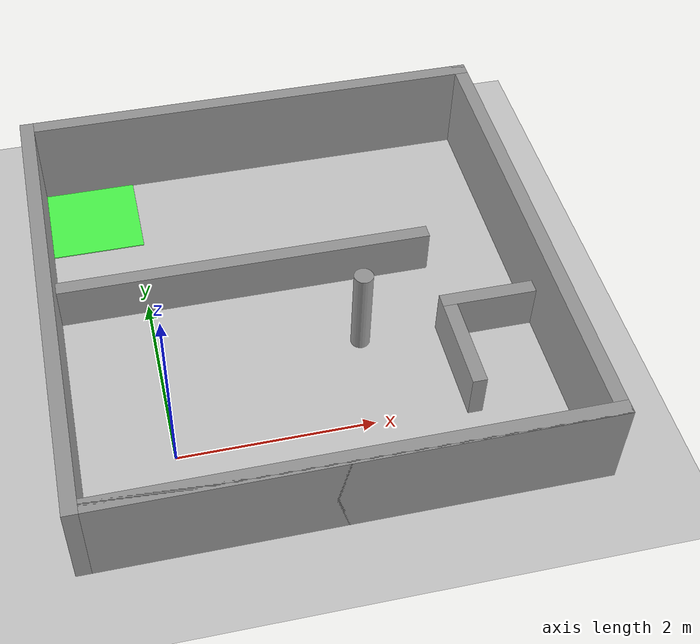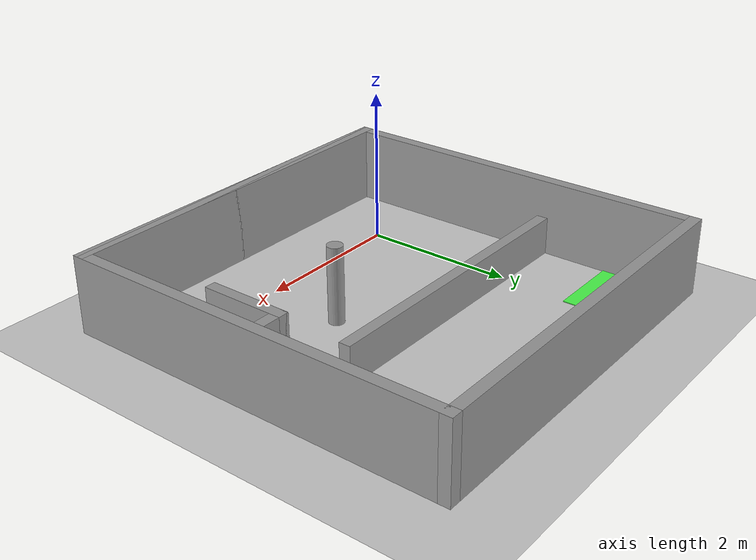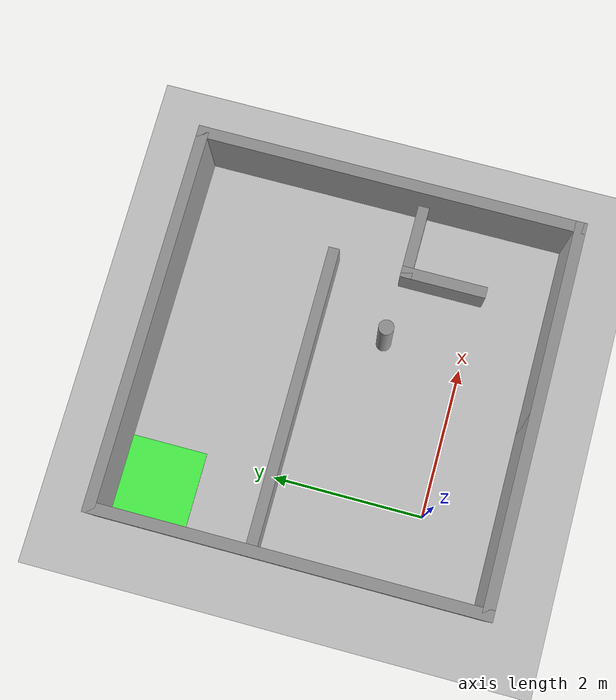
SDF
<sdf version="1.6">
 <world name="default">
  <light name="sun" type="directional">
   <pose>0 0 10 0 -0 0</pose>
   <diffuse>0.8 0.8 0.8 1</diffuse>
   <specular>0.1 0.1 0.1 1</specular>
   <attenuation>
    <range>1000</range>
    <constant>0.9</constant>
    <linear>0.01</linear>
    <quadratic>0.001</quadratic>
   </attenuation>
   <direction>-0.5 0.5 -1</direction>
  </light>
  <model name="ground_plane">
   <static>1</static>
   <link name="link">
    <collision name="collision">
     <geometry><plane><normal>0 0 1</normal><size>100 100</size></plane></geometry>
     <surface><friction><ode><mu>100</mu><mu2>50</mu2></ode></friction></surface>
    </collision>
    <visual name="visual">
     <cast_shadows>0</cast_shadows>
     <geometry><plane><normal>0 0 1</normal><size>100 100</size></plane></geometry>
     <material>
      <script><uri>file://media/materials/scripts/gazebo.material</uri><name>Gazebo/Grey</name></script>
     </material>
    </visual>
   </link>
  </model>
  <gravity>0 0 -9.8</gravity>
  <magnetic_field>6e-06 2.3e-05 -4.2e-05</magnetic_field>
  <atmosphere type="adiabatic"/>
  <physics name="default_physics" default="0" type="ode">
   <max_step_size>0.001</max_step_size>
   <real_time_factor>1</real_time_factor>
   <real_time_update_rate>1000</real_time_update_rate>
  </physics>
  <scene><ambient>0.4 0.4 0.4 1</ambient><background>0.7 0.7 0.7 1</background><shadows>1</shadows></scene>
  <spherical_coordinates>
   <surface_model>EARTH_WGS84</surface_model>
   <latitude_deg>0</latitude_deg>
   <longitude_deg>0</longitude_deg>
   <elevation>0</elevation>
   <heading_deg>0</heading_deg>
  </spherical_coordinates>
  <model name="wall4">
   <link name="Wall_56">
    <pose>0 0 -1 0 -0 0</pose>
    <inertial>
     <mass>1</mass>
     <inertia><ixx>1</ixx><ixy>0</ixy><ixz>0</ixz><iyy>1</iyy><iyz>0</iyz><izz>1</izz></inertia>
    </inertial>
    <visual name="Wall_56_Visual">
     <pose>0 0 1.25 0 -0 0</pose>
     <geometry><box><size>4.15 0.15 0.5</size></box></geometry>
     <material>
      <script><uri>file://media/materials/scripts/gazebo.material</uri><name>Gazebo/Grey</name></script>
      <ambient>1 1 1 1</ambient>
      <diffuse>0.7 0.7 0.7 1</diffuse>
      <specular>0.01 0.01 0.01 1</specular>
      <emissive>0 0 0 1</emissive>
      <shader type="vertex"><normal_map>__default__</normal_map></shader>
     </material>
    </visual>
    <collision name="Wall_56_Collision">
     <pose>0 0 1.25 0 -0 0</pose>
     <geometry><box><size>4.15 0.15 0.5</size></box></geometry>
     <surface>
      <friction>
       <ode><mu>1</mu><mu2>1</mu2><fdir1>0 0 0</fdir1><slip1>0</slip1><slip2>0</slip2></ode>
       <torsional>
        <coefficient>1</coefficient>
        <patch_radius>0</patch_radius>
        <surface_radius>0</surface_radius>
        <use_patch_radius>1</use_patch_radius>
        <ode><slip>0</slip></ode>
       </torsional>
      </friction>
      <bounce><restitution_coefficient>0</restitution_coefficient><threshold>1e+06</threshold></bounce>
      <contact>
       <collide_without_contact>0</collide_without_contact>
       <collide_without_contact_bitmask>1</collide_without_contact_bitmask>
       <collide_bitmask>1</collide_bitmask>
       <ode>
        <soft_cfm>0</soft_cfm>
        <soft_erp>0.2</soft_erp>
        <kp>1e+13</kp>
        <kd>1</kd>
        <max_vel>0.01</max_vel>
        <min_depth>0</min_depth>
       </ode>
       <bullet>
        <split_impulse>1</split_impulse>
        <split_impulse_penetration_threshold>-0.01</split_impulse_penetration_threshold>
        <soft_cfm>0</soft_cfm>
        <soft_erp>0.2</soft_erp>
        <kp>1e+13</kp>
        <kd>1</kd>
       </bullet>
      </contact>
     </surface>
    </collision>
   </link>
   <static>1</static>
   <pose>1 2 0 0 -0 0</pose>
  </model>
  <model name="rectangularWall_0">
   <link name="Wall_44">
    <pose>-2.5 0 -0.75 0 -0 1.5708</pose>
    <inertial>
     <mass>1</mass>
     <inertia><ixx>1</ixx><ixy>0</ixy><ixz>0</ixz><iyy>1</iyy><iyz>0</iyz><izz>1</izz></inertia>
    </inertial>
    <visual name="Wall_44_Visual">
     <pose>0 0 1.25 0 -0 0</pose>
     <geometry><box><size>5.15 0.15 1</size></box></geometry>
     <material>
      <script><uri>file://media/materials/scripts/gazebo.material</uri><name>Gazebo/Grey</name></script>
      <ambient>1 1 1 1</ambient>
      <diffuse>0.7 0.7 0.7 1</diffuse>
      <specular>0.01 0.01 0.01 1</specular>
      <emissive>0 0 0 1</emissive>
      <shader type="vertex"><normal_map>__default__</normal_map></shader>
     </material>
    </visual>
    <collision name="Wall_44_Collision">
     <pose>0 0 1.25 0 -0 0</pose>
     <geometry><box><size>5.15 0.15 1</size></box></geometry>
     <surface>
      <friction>
       <ode><mu>1</mu><mu2>1</mu2><fdir1>0 0 0</fdir1><slip1>0</slip1><slip2>0</slip2></ode>
       <torsional>
        <coefficient>1</coefficient>
        <patch_radius>0</patch_radius>
        <surface_radius>0</surface_radius>
        <use_patch_radius>1</use_patch_radius>
        <ode><slip>0</slip></ode>
       </torsional>
      </friction>
      <bounce><restitution_coefficient>0</restitution_coefficient><threshold>1e+06</threshold></bounce>
      <contact>
       <collide_without_contact>0</collide_without_contact>
       <collide_without_contact_bitmask>1</collide_without_contact_bitmask>
       <collide_bitmask>1</collide_bitmask>
       <ode>
        <soft_cfm>0</soft_cfm>
        <soft_erp>0.2</soft_erp>
        <kp>1e+13</kp>
        <kd>1</kd>
        <max_vel>0.01</max_vel>
        <min_depth>0</min_depth>
       </ode>
       <bullet>
        <split_impulse>1</split_impulse>
        <split_impulse_penetration_threshold>-0.01</split_impulse_penetration_threshold>
        <soft_cfm>0</soft_cfm>
        <soft_erp>0.2</soft_erp>
        <kp>1e+13</kp>
        <kd>1</kd>
       </bullet>
      </contact>
     </surface>
    </collision>
   </link>
   <link name="Wall_46">
    <pose>0 -2.5 -0.75 0 -0 0</pose>
    <inertial>
     <mass>1</mass>
     <inertia><ixx>1</ixx><ixy>0</ixy><ixz>0</ixz><iyy>1</iyy><iyz>0</iyz><izz>1</izz></inertia>
    </inertial>
    <visual name="Wall_46_Visual">
     <pose>0 0 1.25 0 -0 0</pose>
     <geometry><box><size>5.15 0.15 1</size></box></geometry>
     <material>
      <script><uri>file://media/materials/scripts/gazebo.material</uri><name>Gazebo/Grey</name></script>
      <ambient>1 1 1 1</ambient>
      <diffuse>0.7 0.7 0.7 1</diffuse>
      <specular>0.01 0.01 0.01 1</specular>
      <emissive>0 0 0 1</emissive>
      <shader type="vertex"><normal_map>__default__</normal_map></shader>
     </material>
    </visual>
    <collision name="Wall_46_Collision">
     <pose>0 0 1.25 0 -0 0</pose>
     <geometry><box><size>5.15 0.15 1</size></box></geometry>
     <surface>
      <friction>
       <ode><mu>1</mu><mu2>1</mu2><fdir1>0 0 0</fdir1><slip1>0</slip1><slip2>0</slip2></ode>
       <torsional>
        <coefficient>1</coefficient>
        <patch_radius>0</patch_radius>
        <surface_radius>0</surface_radius>
        <use_patch_radius>1</use_patch_radius>
        <ode><slip>0</slip></ode>
       </torsional>
      </friction>
      <bounce><restitution_coefficient>0</restitution_coefficient><threshold>1e+06</threshold></bounce>
      <contact>
       <collide_without_contact>0</collide_without_contact>
       <collide_without_contact_bitmask>1</collide_without_contact_bitmask>
       <collide_bitmask>1</collide_bitmask>
       <ode>
        <soft_cfm>0</soft_cfm>
        <soft_erp>0.2</soft_erp>
        <kp>1e+13</kp>
        <kd>1</kd>
        <max_vel>0.01</max_vel>
        <min_depth>0</min_depth>
       </ode>
       <bullet>
        <split_impulse>1</split_impulse>
        <split_impulse_penetration_threshold>-0.01</split_impulse_penetration_threshold>
        <soft_cfm>0</soft_cfm>
        <soft_erp>0.2</soft_erp>
        <kp>1e+13</kp>
        <kd>1</kd>
       </bullet>
      </contact>
     </surface>
    </collision>
   </link>
   <link name="Wall_48">
    <pose>0 -2.5 -0.75 0 -0 3.14159</pose>
    <inertial>
     <mass>1</mass>
     <inertia><ixx>1</ixx><ixy>0</ixy><ixz>0</ixz><iyy>1</iyy><iyz>0</iyz><izz>1</izz></inertia>
    </inertial>
    <visual name="Wall_48_Visual">
     <pose>0 0 1.25 0 -0 0</pose>
     <geometry><box><size>5.15 0.15 1</size></box></geometry>
     <material>
      <script><uri>file://media/materials/scripts/gazebo.material</uri><name>Gazebo/Grey</name></script>
      <ambient>1 1 1 1</ambient>
      <diffuse>0.7 0.7 0.7 1</diffuse>
      <specular>0.01 0.01 0.01 1</specular>
      <emissive>0 0 0 1</emissive>
      <shader type="vertex"><normal_map>__default__</normal_map></shader>
     </material>
    </visual>
    <collision name="Wall_48_Collision">
     <pose>0 0 1.25 0 -0 0</pose>
     <geometry><box><size>5.15 0.15 1</size></box></geometry>
     <surface>
      <friction>
       <ode><mu>1</mu><mu2>1</mu2><fdir1>0 0 0</fdir1><slip1>0</slip1><slip2>0</slip2></ode>
       <torsional>
        <coefficient>1</coefficient>
        <patch_radius>0</patch_radius>
        <surface_radius>0</surface_radius>
        <use_patch_radius>1</use_patch_radius>
        <ode><slip>0</slip></ode>
       </torsional>
      </friction>
      <bounce><restitution_coefficient>0</restitution_coefficient><threshold>1e+06</threshold></bounce>
      <contact>
       <collide_without_contact>0</collide_without_contact>
       <collide_without_contact_bitmask>1</collide_without_contact_bitmask>
       <collide_bitmask>1</collide_bitmask>
       <ode>
        <soft_cfm>0</soft_cfm>
        <soft_erp>0.2</soft_erp>
        <kp>1e+13</kp>
        <kd>1</kd>
        <max_vel>0.01</max_vel>
        <min_depth>0</min_depth>
       </ode>
       <bullet>
        <split_impulse>1</split_impulse>
        <split_impulse_penetration_threshold>-0.01</split_impulse_penetration_threshold>
        <soft_cfm>0</soft_cfm>
        <soft_erp>0.2</soft_erp>
        <kp>1e+13</kp>
        <kd>1</kd>
       </bullet>
      </contact>
     </surface>
    </collision>
   </link>
   <link name="Wall_50">
    <pose>0 -2.5 -0.75 0 -0 3.14159</pose>
    <inertial>
     <mass>1</mass>
     <inertia><ixx>1</ixx><ixy>0</ixy><ixz>0</ixz><iyy>1</iyy><iyz>0</iyz><izz>1</izz></inertia>
    </inertial>
    <visual name="Wall_50_Visual">
     <pose>0 0 1.25 0 -0 0</pose>
     <geometry><box><size>5.15 0.15 1</size></box></geometry>
     <material>
      <script><uri>file://media/materials/scripts/gazebo.material</uri><name>Gazebo/Grey</name></script>
      <ambient>1 1 1 1</ambient>
      <diffuse>0.7 0.7 0.7 1</diffuse>
      <specular>0.01 0.01 0.01 1</specular>
      <emissive>0 0 0 1</emissive>
      <shader type="vertex"><normal_map>__default__</normal_map></shader>
     </material>
    </visual>
    <collision name="Wall_50_Collision">
     <pose>0 0 1.25 0 -0 0</pose>
     <geometry><box><size>5.15 0.15 1</size></box></geometry>
     <surface>
      <friction>
       <ode><mu>1</mu><mu2>1</mu2><fdir1>0 0 0</fdir1><slip1>0</slip1><slip2>0</slip2></ode>
       <torsional>
        <coefficient>1</coefficient>
        <patch_radius>0</patch_radius>
        <surface_radius>0</surface_radius>
        <use_patch_radius>1</use_patch_radius>
        <ode><slip>0</slip></ode>
       </torsional>
      </friction>
      <bounce><restitution_coefficient>0</restitution_coefficient><threshold>1e+06</threshold></bounce>
      <contact>
       <collide_without_contact>0</collide_without_contact>
       <collide_without_contact_bitmask>1</collide_without_contact_bitmask>
       <collide_bitmask>1</collide_bitmask>
       <ode>
        <soft_cfm>0</soft_cfm>
        <soft_erp>0.2</soft_erp>
        <kp>1e+13</kp>
        <kd>1</kd>
        <max_vel>0.01</max_vel>
        <min_depth>0</min_depth>
       </ode>
       <bullet>
        <split_impulse>1</split_impulse>
        <split_impulse_penetration_threshold>-0.01</split_impulse_penetration_threshold>
        <soft_cfm>0</soft_cfm>
        <soft_erp>0.2</soft_erp>
        <kp>1e+13</kp>
        <kd>1</kd>
       </bullet>
      </contact>
     </surface>
    </collision>
   </link>
   <link name="Wall_52">
    <pose>2.5 0 -0.75 0 -0 1.5708</pose>
    <inertial>
     <mass>1</mass>
     <inertia><ixx>1</ixx><ixy>0</ixy><ixz>0</ixz><iyy>1</iyy><iyz>0</iyz><izz>1</izz></inertia>
    </inertial>
    <visual name="Wall_52_Visual">
     <pose>0 0 1.25 0 -0 0</pose>
     <geometry><box><size>5.15 0.15 1</size></box></geometry>
     <material>
      <script><uri>file://media/materials/scripts/gazebo.material</uri><name>Gazebo/Grey</name></script>
      <ambient>1 1 1 1</ambient>
      <diffuse>0.7 0.7 0.7 1</diffuse>
      <specular>0.01 0.01 0.01 1</specular>
      <emissive>0 0 0 1</emissive>
      <shader type="vertex"><normal_map>__default__</normal_map></shader>
     </material>
    </visual>
    <collision name="Wall_52_Collision">
     <pose>0 0 1.25 0 -0 0</pose>
     <geometry><box><size>5.15 0.15 1</size></box></geometry>
     <surface>
      <friction>
       <ode><mu>1</mu><mu2>1</mu2><fdir1>0 0 0</fdir1><slip1>0</slip1><slip2>0</slip2></ode>
       <torsional>
        <coefficient>1</coefficient>
        <patch_radius>0</patch_radius>
        <surface_radius>0</surface_radius>
        <use_patch_radius>1</use_patch_radius>
        <ode><slip>0</slip></ode>
       </torsional>
      </friction>
      <bounce><restitution_coefficient>0</restitution_coefficient><threshold>1e+06</threshold></bounce>
      <contact>
       <collide_without_contact>0</collide_without_contact>
       <collide_without_contact_bitmask>1</collide_without_contact_bitmask>
       <collide_bitmask>1</collide_bitmask>
       <ode>
        <soft_cfm>0</soft_cfm>
        <soft_erp>0.2</soft_erp>
        <kp>1e+13</kp>
        <kd>1</kd>
        <max_vel>0.01</max_vel>
        <min_depth>0</min_depth>
       </ode>
       <bullet>
        <split_impulse>1</split_impulse>
        <split_impulse_penetration_threshold>-0.01</split_impulse_penetration_threshold>
        <soft_cfm>0</soft_cfm>
        <soft_erp>0.2</soft_erp>
        <kp>1e+13</kp>
        <kd>1</kd>
       </bullet>
      </contact>
     </surface>
    </collision>
   </link>
   <link name="Wall_54">
    <pose>0 2.5 -0.75 0 -0 3.14159</pose>
    <inertial>
     <mass>1</mass>
     <inertia><ixx>1</ixx><ixy>0</ixy><ixz>0</ixz><iyy>1</iyy><iyz>0</iyz><izz>1</izz></inertia>
    </inertial>
    <visual name="Wall_54_Visual">
     <pose>0 0 1.25 0 -0 0</pose>
     <geometry><box><size>5.15 0.15 1</size></box></geometry>
     <material>
      <script><uri>file://media/materials/scripts/gazebo.material</uri><name>Gazebo/Grey</name></script>
      <ambient>1 1 1 1</ambient>
      <diffuse>0.7 0.7 0.7 1</diffuse>
      <specular>0.01 0.01 0.01 1</specular>
      <emissive>0 0 0 1</emissive>
      <shader type="vertex"><normal_map>__default__</normal_map></shader>
     </material>
    </visual>
    <collision name="Wall_54_Collision">
     <pose>0 0 1.25 0 -0 0</pose>
     <geometry><box><size>5.15 0.15 1</size></box></geometry>
     <surface>
      <friction>
       <ode><mu>1</mu><mu2>1</mu2><fdir1>0 0 0</fdir1><slip1>0</slip1><slip2>0</slip2></ode>
       <torsional>
        <coefficient>1</coefficient>
        <patch_radius>0</patch_radius>
        <surface_radius>0</surface_radius>
        <use_patch_radius>1</use_patch_radius>
        <ode><slip>0</slip></ode>
       </torsional>
      </friction>
      <bounce><restitution_coefficient>0</restitution_coefficient><threshold>1e+06</threshold></bounce>
      <contact>
       <collide_without_contact>0</collide_without_contact>
       <collide_without_contact_bitmask>1</collide_without_contact_bitmask>
       <collide_bitmask>1</collide_bitmask>
       <ode>
        <soft_cfm>0</soft_cfm>
        <soft_erp>0.2</soft_erp>
        <kp>1e+13</kp>
        <kd>1</kd>
        <max_vel>0.01</max_vel>
        <min_depth>0</min_depth>
       </ode>
       <bullet>
        <split_impulse>1</split_impulse>
        <split_impulse_penetration_threshold>-0.01</split_impulse_penetration_threshold>
        <soft_cfm>0</soft_cfm>
        <soft_erp>0.2</soft_erp>
        <kp>1e+13</kp>
        <kd>1</kd>
       </bullet>
      </contact>
     </surface>
    </collision>
   </link>
   <static>1</static>
   <pose>1.5 1.5 0 0 -0 0</pose>
  </model>
  <model name="unit_cylinder_0_0">
   <link name="link">
    <inertial>
     <mass>1</mass>
     <inertia><ixx>0.145833</ixx><ixy>0</ixy><ixz>0</ixz><iyy>0.145833</iyy><iyz>0</iyz><izz>0.125</izz></inertia>
    </inertial>
    <visual name="visual">
     <geometry><cylinder><radius>0.1</radius><length>1</length></cylinder></geometry>
     <material>
      <script><name>Gazebo/Grey</name><uri>file://media/materials/scripts/gazebo.material</uri></script>
      <ambient>0.3 0.3 0.3 1</ambient>
      <diffuse>0.7 0.7 0.7 1</diffuse>
      <specular>0.01 0.01 0.01 1</specular>
      <emissive>0 0 0 1</emissive>
      <shader type="vertex"><normal_map>__default__</normal_map></shader>
     </material>
    </visual>
    <collision name="collision">
     <geometry><cylinder><radius>0.1</radius><length>1</length></cylinder></geometry>
     <surface>
      <friction>
       <ode><mu>1</mu><mu2>1</mu2><fdir1>0 0 0</fdir1><slip1>0</slip1><slip2>0</slip2></ode>
       <torsional>
        <coefficient>1</coefficient>
        <patch_radius>0</patch_radius>
        <surface_radius>0</surface_radius>
        <use_patch_radius>1</use_patch_radius>
        <ode><slip>0</slip></ode>
       </torsional>
      </friction>
      <bounce><restitution_coefficient>0</restitution_coefficient><threshold>1e+06</threshold></bounce>
      <contact>
       <collide_without_contact>0</collide_without_contact>
       <collide_without_contact_bitmask>1</collide_without_contact_bitmask>
       <collide_bitmask>1</collide_bitmask>
       <ode>
        <soft_cfm>0</soft_cfm>
        <soft_erp>0.2</soft_erp>
        <kp>1e+13</kp>
        <kd>1</kd>
        <max_vel>0.01</max_vel>
        <min_depth>0</min_depth>
       </ode>
       <bullet>
        <split_impulse>1</split_impulse>
        <split_impulse_penetration_threshold>-0.01</split_impulse_penetration_threshold>
        <soft_cfm>0</soft_cfm>
        <soft_erp>0.2</soft_erp>
        <kp>1e+13</kp>
        <kd>1</kd>
       </bullet>
      </contact>
     </surface>
    </collision>
   </link>
   <static>0</static>
   <pose>2.1037 1.06319 0.499992 0 0 -5e-06</pose>
  </model>
  <model name="wall3_0">
   <link name="Wall_0">
    <pose>-0.5 0 -1 0 -0 1.5708</pose>
    <inertial>
     <mass>1</mass>
     <inertia><ixx>1</ixx><ixy>0</ixy><ixz>0</ixz><iyy>1</iyy><iyz>0</iyz><izz>1</izz></inertia>
    </inertial>
    <visual name="Wall_0_Visual">
     <pose>0 0 1.25 0 -0 0</pose>
     <geometry><box><size>1.15 0.15 0.5</size></box></geometry>
     <material>
      <script><uri>file://media/materials/scripts/gazebo.material</uri><name>Gazebo/Grey</name></script>
      <ambient>1 1 1 1</ambient>
      <diffuse>0.7 0.7 0.7 1</diffuse>
      <specular>0.01 0.01 0.01 1</specular>
      <emissive>0 0 0 1</emissive>
      <shader type="vertex"><normal_map>__default__</normal_map></shader>
     </material>
    </visual>
    <collision name="Wall_0_Collision">
     <pose>0 0 1.25 0 -0 0</pose>
     <geometry><box><size>1.15 0.15 0.5</size></box></geometry>
     <surface>
      <friction>
       <ode><mu>1</mu><mu2>1</mu2><fdir1>0 0 0</fdir1><slip1>0</slip1><slip2>0</slip2></ode>
       <torsional>
        <coefficient>1</coefficient>
        <patch_radius>0</patch_radius>
        <surface_radius>0</surface_radius>
        <use_patch_radius>1</use_patch_radius>
        <ode><slip>0</slip></ode>
       </torsional>
      </friction>
      <bounce><restitution_coefficient>0</restitution_coefficient><threshold>1e+06</threshold></bounce>
      <contact>
       <collide_without_contact>0</collide_without_contact>
       <collide_without_contact_bitmask>1</collide_without_contact_bitmask>
       <collide_bitmask>1</collide_bitmask>
       <ode>
        <soft_cfm>0</soft_cfm>
        <soft_erp>0.2</soft_erp>
        <kp>1e+13</kp>
        <kd>1</kd>
        <max_vel>0.01</max_vel>
        <min_depth>0</min_depth>
       </ode>
       <bullet>
        <split_impulse>1</split_impulse>
        <split_impulse_penetration_threshold>-0.01</split_impulse_penetration_threshold>
        <soft_cfm>0</soft_cfm>
        <soft_erp>0.2</soft_erp>
        <kp>1e+13</kp>
        <kd>1</kd>
       </bullet>
      </contact>
     </surface>
    </collision>
   </link>
   <link name="Wall_2">
    <pose>0 0.5 0 0 -0 0</pose>
    <visual name="Wall_2_Visual">
     <pose>0 0 0.25 0 -0 0</pose>
     <geometry><box><size>1.15 0.15 0.5</size></box></geometry>
     <material>
      <script><uri>file://media/materials/scripts/gazebo.material</uri><name>Gazebo/Grey</name></script>
      <ambient>1 1 1 1</ambient>
      <diffuse>0.7 0.7 0.7 1</diffuse>
      <specular>0.01 0.01 0.01 1</specular>
      <emissive>0 0 0 1</emissive>
     </material>
    </visual>
    <collision name="Wall_2_Collision">
     <pose>0 0 0.25 0 -0 0</pose>
     <geometry><box><size>1.15 0.15 0.5</size></box></geometry>
     <surface>
      <friction>
       <ode><mu>1</mu><mu2>1</mu2><fdir1>0 0 0</fdir1><slip1>0</slip1><slip2>0</slip2></ode>
       <torsional>
        <coefficient>1</coefficient>
        <patch_radius>0</patch_radius>
        <surface_radius>0</surface_radius>
        <use_patch_radius>1</use_patch_radius>
        <ode><slip>0</slip></ode>
       </torsional>
      </friction>
      <bounce><restitution_coefficient>0</restitution_coefficient><threshold>1e+06</threshold></bounce>
      <contact>
       <collide_without_contact>0</collide_without_contact>
       <collide_without_contact_bitmask>1</collide_without_contact_bitmask>
       <collide_bitmask>1</collide_bitmask>
       <ode>
        <soft_cfm>0</soft_cfm>
        <soft_erp>0.2</soft_erp>
        <kp>1e+13</kp>
        <kd>1</kd>
        <max_vel>0.01</max_vel>
        <min_depth>0</min_depth>
       </ode>
       <bullet>
        <split_impulse>1</split_impulse>
        <split_impulse_penetration_threshold>-0.01</split_impulse_penetration_threshold>
        <soft_cfm>0</soft_cfm>
        <soft_erp>0.2</soft_erp>
        <kp>1e+13</kp>
        <kd>1</kd>
       </bullet>
      </contact>
     </surface>
    </collision>
   </link>
   <static>1</static>
   <pose>3.5 0.5 0 0 -0 0</pose>
  </model>
  <model name="unit_box_0_0_0">
   <link name="link">
    <pose>0 0 -0.495 0 -0 0</pose>
    <inertial>
     <mass>1</mass>
     <inertia>
      <ixx>0.166667</ixx>
      <ixy>0</ixy>
      <ixz>0</ixz>
      <iyy>0.166667</iyy>
      <iyz>0</iyz>
      <izz>0.166667</izz>
     </inertia>
    </inertial>
    <visual name="visual">
     <geometry><box><size>1 1 0.01</size></box></geometry>
     <material>
      <script><name>Gazebo/Grey</name><uri>file://media/materials/scripts/gazebo.material</uri></script>
      <ambient>0.3 1 0.3 1</ambient>
      <diffuse>0.7 0.7 0.7 1</diffuse>
      <specular>0.01 0.01 0.01 1</specular>
      <emissive>0 0 0 1</emissive>
      <shader type="vertex"><normal_map>__default__</normal_map></shader>
     </material>
    </visual>
    <collision name="collision">
     <geometry><box><size>1 1 0.01</size></box></geometry>
     <surface>
      <friction>
       <ode><mu>1</mu><mu2>1</mu2><fdir1>0 0 0</fdir1><slip1>0</slip1><slip2>0</slip2></ode>
       <torsional>
        <coefficient>1</coefficient>
        <patch_radius>0</patch_radius>
        <surface_radius>0</surface_radius>
        <use_patch_radius>1</use_patch_radius>
        <ode><slip>0</slip></ode>
       </torsional>
      </friction>
      <bounce><restitution_coefficient>0</restitution_coefficient><threshold>1e+06</threshold></bounce>
      <contact>
       <collide_without_contact>0</collide_without_contact>
       <collide_without_contact_bitmask>1</collide_without_contact_bitmask>
       <collide_bitmask>1</collide_bitmask>
       <ode>
        <soft_cfm>0</soft_cfm>
        <soft_erp>0.2</soft_erp>
        <kp>1e+13</kp>
        <kd>1</kd>
        <max_vel>0.01</max_vel>
        <min_depth>0</min_depth>
       </ode>
       <bullet>
        <split_impulse>1</split_impulse>
        <split_impulse_penetration_threshold>-0.01</split_impulse_penetration_threshold>
        <soft_cfm>0</soft_cfm>
        <soft_erp>0.2</soft_erp>
        <kp>1e+13</kp>
        <kd>1</kd>
       </bullet>
      </contact>
     </surface>
    </collision>
   </link>
   <static>0</static>
   <pose>-0.424051 3.425 0.5 0 0 -6e-06</pose>
  </model>
 </world>
</sdf>
